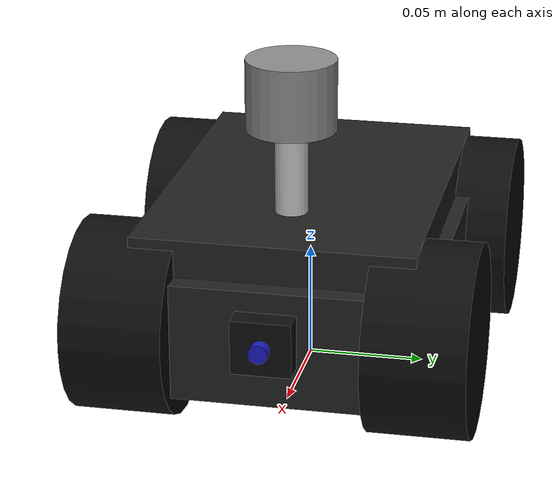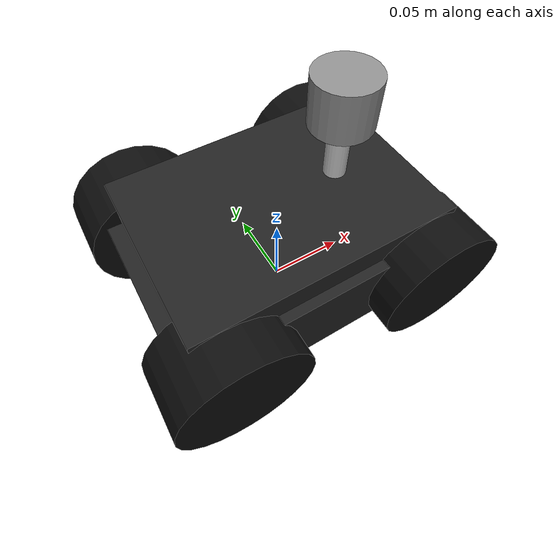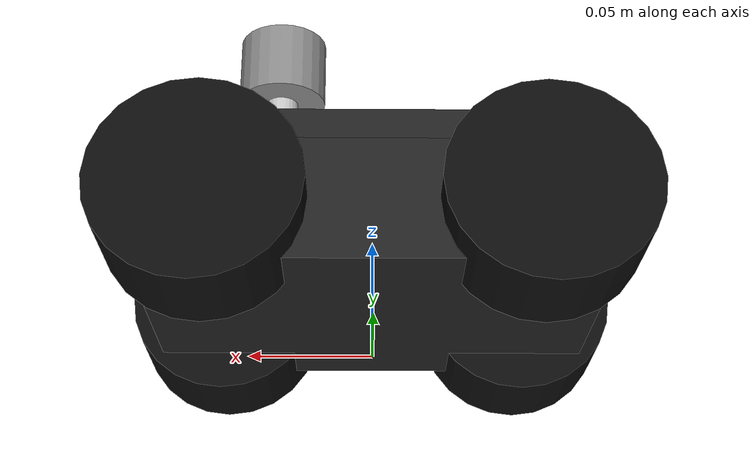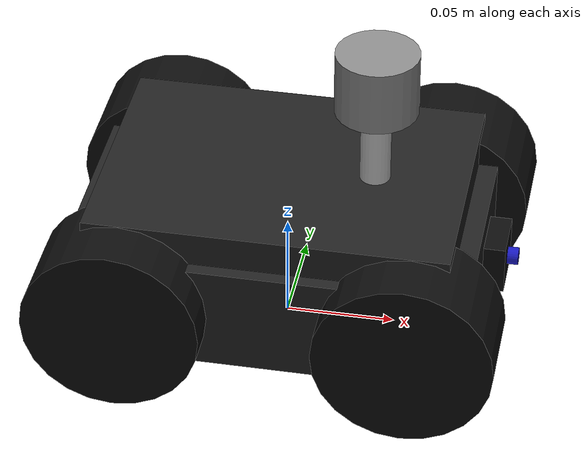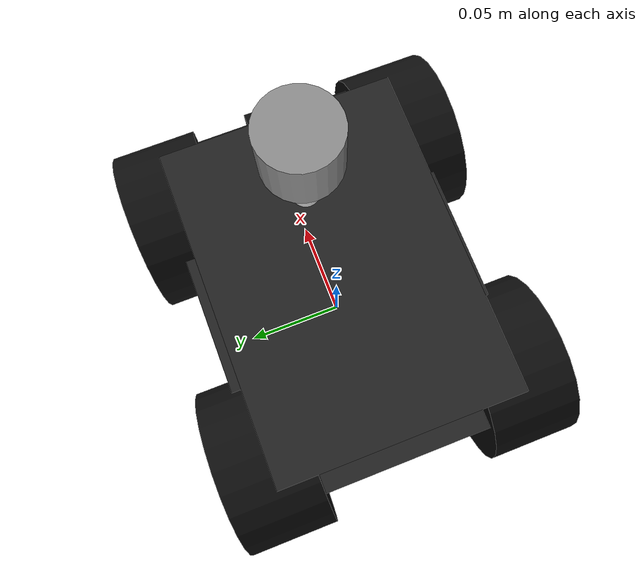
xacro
<?xml version="1.0"?>
<robot name="articubot_one" xmlns:xacro="http://www.ros.org/wiki/xacro">

  <xacro:include filename="inertial_macros.xacro"/>
  <xacro:include filename="robot_core.xacro"/>
  <xacro:include filename="gazebo_control.xacro"/>
  <xacro:include filename="lidar.xacro"/>
  <xacro:include filename="camera.xacro"/>

</robot>

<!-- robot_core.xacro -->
<robot xmlns:xacro="http://www.ros.org/wiki/xacro">

  <!-- Rozmery v metroch: telo, kolesa, rozchod (pre Gazebo diff drive a vizual). -->
  <xacro:property name="body_l"       value="0.183"/>
  <xacro:property name="body_w"       value="0.130"/>
  <xacro:property name="body_h"       value="0.050"/>
  <xacro:property name="shell_h"      value="0.016"/>
  <xacro:property name="wheel_radius" value="0.0406"/>
  <xacro:property name="wheel_width"  value="0.0425"/>
  <xacro:property name="wheel_sep"    value="0.123"/>
  <xacro:property name="wheel_base"   value="0.131"/>

  <material name="dark_gray"><color rgba="0.13 0.13 0.13 1"/></material>
  <material name="black">    <color rgba="0.05 0.05 0.05 1"/></material>
  <material name="gray">     <color rgba="0.55 0.55 0.55 1"/></material>
  <material name="orange">   <color rgba="0.95 0.45 0.0  1"/></material>
  <material name="silver">   <color rgba="0.78 0.78 0.78 1"/></material>
  <material name="blue">     <color rgba="0.1  0.1  0.75 1"/></material>

  <!-- base_footprint: projekcia na podlahu; base_link: teleso posunute o polomer kolesa po Z. -->
  <link name="base_footprint"/>
  <joint name="base_footprint_joint" type="fixed">
    <origin xyz="0 0 ${wheel_radius}" rpy="0 0 0"/>
    <parent link="base_footprint"/>
    <child  link="base_link"/>
  </joint>

  <!-- Hlavny box + predny pruh (orientacia v simulacii). -->
  <link name="base_link">
    <inertial>
      <mass value="1.2"/>
      <origin xyz="0 0 0"/>
      <inertia ixx="0.003" iyy="0.005" izz="0.006"
               ixy="0" ixz="0" iyz="0"/>
    </inertial>
    <visual name="body">
      <origin xyz="0 0 0"/>
      <geometry><box size="${body_l} ${body_w} ${body_h}"/></geometry>
      <material name="dark_gray"/>
    </visual>
    <visual name="front_stripe">
      <origin xyz="${body_l/2 - 0.004} 0 0.006"/>
      <geometry><box size="0.006 ${body_w - 0.010} 0.010"/></geometry>
      <material name="orange"/>
    </visual>
    <collision>
      <origin xyz="0 0 0"/>
      <geometry><box size="${body_l} ${body_w} ${body_h}"/></geometry>
    </collision>
  </link>

  <!-- Horna "karoseria" cast, cisto vizual + kolizia. -->
  <link name="top_shell_link">
    <inertial>
      <mass value="0.050"/>
      <origin xyz="0 0 0"/>
      <inertia ixx="1.5e-4" iyy="2.0e-4" izz="3.0e-4"
               ixy="0" ixz="0" iyz="0"/>
    </inertial>
    <visual>
      <origin xyz="0 0 0"/>
      <geometry><box size="0.165 0.118 ${shell_h}"/></geometry>
      <material name="dark_gray"/>
    </visual>
    <collision>
      <origin xyz="0 0 0"/>
      <geometry><box size="0.165 0.118 ${shell_h}"/></geometry>
    </collision>
  </link>
  <joint name="top_shell_joint" type="fixed">
    <origin xyz="0 0 ${body_h/2 + shell_h/2}" rpy="0 0 0"/>
    <parent link="base_link"/>
    <child  link="top_shell_link"/>
  </joint>
  <gazebo reference="top_shell_joint">
    <preserveFixedJoint>true</preserveFixedJoint>
  </gazebo>

  <!--
    Makro kolesa:
    - jedno makro sa pouzije 4x (FL, FR, BL, BR),
    - kazde koleso ma continuous joint okolo osi Y.
  -->
  <xacro:macro name="wheel" params="name xyz">
    <link name="${name}">
      <inertial>
        <mass value="0.061"/>
        <origin xyz="0 0 0"/>
        <inertia ixx="6.7e-5" iyy="4.3e-5" izz="4.3e-5"
                 ixy="0" ixz="0" iyz="0"/>
      </inertial>
      <visual name="tyre">
        <origin xyz="0 0 0" rpy="${pi/2} 0 0"/>
        <geometry><cylinder radius="${wheel_radius}" length="${wheel_width}"/></geometry>
        <material name="black"/>
      </visual>
      <visual name="rim">
        <origin xyz="0 0 0" rpy="${pi/2} 0 0"/>
        <geometry><cylinder radius="${wheel_radius * 0.55}" length="${wheel_width * 0.3}"/></geometry>
        <material name="silver"/>
      </visual>
      <collision>
        <origin xyz="0 0 0" rpy="${pi/2} 0 0"/>
        <geometry><cylinder radius="${wheel_radius}" length="${wheel_width}"/></geometry>
      </collision>
    </link>
    <joint name="${name}_joint" type="continuous">
      <origin xyz="${xyz}" rpy="0 0 0"/>
      <parent link="base_link"/>
      <child  link="${name}"/>
      <axis xyz="0 1 0"/>
      <dynamics damping="0.01" friction="0.0"/>
    </joint>
  </xacro:macro>

  <xacro:wheel name="wheel_front_left"  xyz=" ${wheel_base/2}  ${wheel_sep/2} 0"/>
  <xacro:wheel name="wheel_front_right" xyz=" ${wheel_base/2} -${wheel_sep/2} 0"/>
  <xacro:wheel name="wheel_back_left"   xyz="-${wheel_base/2}  ${wheel_sep/2} 0"/>
  <xacro:wheel name="wheel_back_right"  xyz="-${wheel_base/2} -${wheel_sep/2} 0"/>

  <!-- Povrchove vlastnosti v Gazebe (trenie, material). -->
  <gazebo reference="base_link">
    <mu1>0.2</mu1><mu2>0.2</mu2>
    <selfCollide>false</selfCollide>
    <material>Gazebo/DarkGrey</material>
  </gazebo>
  <gazebo reference="top_shell_link">
    <mu1>0.2</mu1><mu2>0.2</mu2>
    <selfCollide>false</selfCollide>
    <material>Gazebo/DarkGrey</material>
  </gazebo>

  <xacro:macro name="wheel_gz" params="name">
    <gazebo reference="${name}">
      <mu1>1.0</mu1><mu2>0.12</mu2>
      <fdir1>0 1 0</fdir1><kp>1e6</kp><kd>10</kd>
      <selfCollide>false</selfCollide>
      <material>Gazebo/Black</material>
    </gazebo>
  </xacro:macro>
  <xacro:wheel_gz name="wheel_front_left"/>
  <xacro:wheel_gz name="wheel_front_right"/>
  <xacro:wheel_gz name="wheel_back_left"/>
  <xacro:wheel_gz name="wheel_back_right"/>

</robot>

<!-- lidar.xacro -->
<robot xmlns:xacro="http://www.ros.org/wiki/xacro">

  <!-- LD19 model: pevny na base_link; v Gazebo topic scan, bridge -> ROS /scan. -->
  <link name="lidar_link">
    <inertial>
      <mass value="0.046"/>
      <origin xyz="0 0 0"/>
      <inertia ixx="1.2e-5" iyy="1.5e-5" izz="1.9e-5"
               ixy="0" ixz="0" iyz="0"/>
    </inertial>
    <visual name="post">
      <origin xyz="0 0 -0.033"/>
      <geometry><cylinder radius="0.007" length="0.036"/></geometry>
      <material name="silver"/>
    </visual>
    <visual name="puck">
      <origin xyz="0 0 0"/>
      <geometry><cylinder radius="0.019" length="0.030"/></geometry>
      <material name="gray"/>
    </visual>
    <collision>
      <origin xyz="0 0 0"/>
      <geometry><cylinder radius="0.019" length="0.030"/></geometry>
    </collision>
  </link>

  <joint name="lidar_joint" type="fixed">
    <origin xyz="0.04 0 0.092" rpy="0 0 0"/>
    <parent link="base_link"/>
    <child  link="lidar_link"/>
  </joint>
  <gazebo reference="lidar_joint">
    <preserveFixedJoint>true</preserveFixedJoint>
  </gazebo>

  <gazebo reference="lidar_link">
    <material>Gazebo/Grey</material>
    <sensor name="lidar_sensor" type="gpu_lidar">
      <always_on>true</always_on>
      <update_rate>10</update_rate>
      <visualize>false</visualize>
      <topic>scan</topic>
      <gz_frame_id>lidar_link</gz_frame_id>
      <ray>
        <scan>
          <horizontal>
            <samples>360</samples>
            <resolution>1</resolution>
            <min_angle>-3.14159</min_angle>
            <max_angle>3.14159</max_angle>
          </horizontal>
        </scan>
        <range>
          <min>0.12</min>
          <max>12.0</max>
          <resolution>0.01</resolution>
        </range>
        <noise><type>gaussian</type><mean>0.0</mean><stddev>0.01</stddev></noise>
      </ray>
    </sensor>
  </gazebo>

</robot>

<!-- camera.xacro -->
<robot xmlns:xacro="http://www.ros.org/wiki/xacro">

  <!-- CSI kamera model: Gazebo image + camera_info; bridge na ROS topic podla ros_gz_bridge.yaml. -->
  <link name="camera_link">
    <inertial>
      <mass value="0.0035"/>
      <origin xyz="0 0 0"/>
      <inertia ixx="1.7e-7" iyy="1.8e-7" izz="3.0e-7"
               ixy="0" ixz="0" iyz="0"/>
    </inertial>
    <visual name="board">
      <origin xyz="0 0 0"/>
      <geometry><box size="0.010 0.025 0.023"/></geometry>
      <material name="black"/>
    </visual>
    <visual name="lens">
      <origin xyz="0.007 0 0" rpy="0 ${pi/2} 0"/>
      <geometry><cylinder radius="0.004" length="0.006"/></geometry>
      <material name="blue"/>
    </visual>
    <collision>
      <origin xyz="0 0 0"/>
      <geometry><box size="0.010 0.025 0.023"/></geometry>
    </collision>
  </link>

  <joint name="camera_joint" type="fixed">
    <origin xyz="0.097 0 0.005" rpy="0 0 0"/>
    <parent link="base_link"/>
    <child  link="camera_link"/>
  </joint>
  <gazebo reference="camera_joint">
    <preserveFixedJoint>true</preserveFixedJoint>
  </gazebo>

  <gazebo reference="camera_link">
    <material>Gazebo/Black</material>
    <sensor name="camera_sensor" type="camera">
      <always_on>true</always_on>
      <update_rate>8</update_rate>
      <visualize>false</visualize>
      <topic>camera</topic>
      <camera>
        <horizontal_fov>1.1519</horizontal_fov>
        <image><format>R8G8B8</format><height>480</height><width>640</width></image>
        <clip><near>0.05</near><far>100.0</far></clip>
        <noise><type>gaussian</type><mean>0.0</mean><stddev>0.007</stddev></noise>
      </camera>
    </sensor>
  </gazebo>

</robot>
